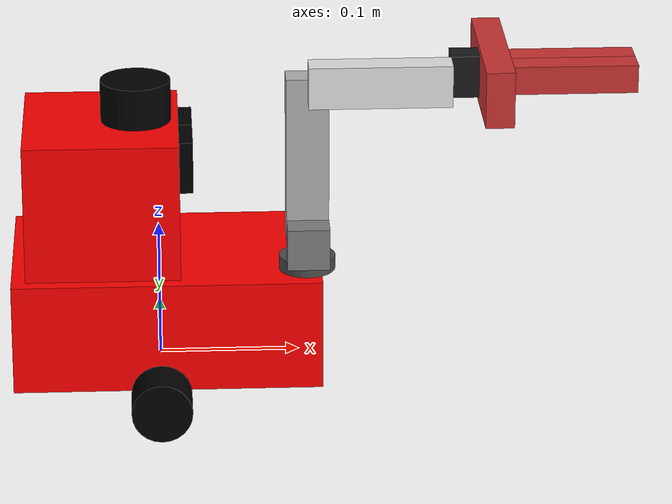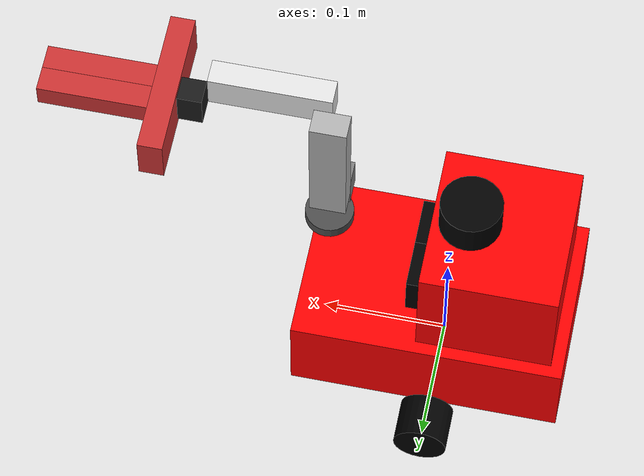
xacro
<?xml version="1.0"?>
<robot xmlns:xacro="http://www.ros.org/wiki/xacro" name="robot">
    <xacro:arg name="initial_positions_file" default="initial_positions.yaml" />

    <!-- Import robot urdf file -->
    <xacro:include filename="$(find robot_arm)/urdf/robot_moveit.urdf.xacro" />

    <!-- Import control_xacro -->
    <xacro:include filename="robot.ros2_control.xacro" />

    <xacro:robot_ros2_control name="FakeSystem" initial_positions_file="$(arg initial_positions_file)"/>

</robot>

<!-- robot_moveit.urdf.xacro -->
<robot xmlns:xacro="http://www.ros.org/wiki/xacro"  name="robot">
    <xacro:arg name="prefix" default="" />
    <xacro:arg name="use_sim_time" default="false" />

    <xacro:arg name="use_fake_hardware" default="false" />
    <xacro:arg name="fake_sensor_commands" default="false" />

    <xacro:include filename="robot_core.xacro" />
    <xacro:include filename="robot_arm.xacro" />
    <xacro:arm/>
    <xacro:include filename="lidar.xacro" />
    <xacro:include filename="camera.xacro" />
    <xacro:include filename="depth_camera.xacro" />

</robot>

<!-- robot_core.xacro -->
<robot xmlns:xacro="http://www.ros.org/wiki/xacro">

    <xacro:include filename="inertial_macros.xacro"/>

    <material name="white">
        <color rgba="1 1 1 1"/>
    </material>

    <material name="black">
        <color rgba="0 0 0 1"/>
    </material>

    <material name="red">
        <color rgba="1 0 0 1"/>
    </material>

    <material name="green">
        <color rgba="0 1 0 1"/>
    </material>

    <material name="blue">
        <color rgba="0 0 1 1"/>
    </material>

    <!-- BASE LINK -->

    <link name="base_link">
    </link>

    <!-- BASE_FOOTPRINT LINK -->
    <joint name="base_footprint_joint" type="fixed">
        <parent link="base_link"/>
        <child link="base_footprint"/>
        <origin xyz="0 0 0" rpy="0 0 0"/>
    </joint>

    <link name="base_footprint">
    </link>

    <!-- CHASSIS LINK -->

    <joint name="chassis_joint" type="fixed">
        <parent link="base_link"/>
        <child link="chassis"/>
        <origin xyz="-0.095 0 0"/>
    </joint>

    <link name="chassis">
        <visual>
            <origin xyz="0.1 0 0.04"/>
            <geometry>
                <box size="0.220 0.14 0.08"/>
            </geometry>
            <material name="red"/>
        </visual>
        <collision>
            <origin xyz="0.1 0 0.04"/>
            <geometry>
                <box size="0.220 0.14 0.08"/>
            </geometry>
        </collision>
        <xacro:inertial_box mass="1.7" x="0.20" y="0.14" z="0.08">
            <origin xyz="0.1 0 0.04" rpy="0 0 0 "/>
        </xacro:inertial_box>
    </link>

    <gazebo reference="chassis">
        <material>Gazebo/Red</material>
    </gazebo>

    <!-- RISERS LINK   -->
    <joint name="risers_joint" type="fixed">
        <parent link="chassis"/>
        <child link="risers_link"/>
        <origin xyz="0.0 0 0.08"/>
    </joint>
    <link name="risers_link">
        <visual>
            <origin xyz="0.055 0 0.05"/>
            <geometry>
                <box size="0.110 0.12 0.1"/>
            </geometry>
            <material name="red"/>
        </visual>
        <collision>
            <origin xyz="0.055 0 0.130"/>
            <geometry>
                <box size="0.110 0.12 0.1"/>
            </geometry>
        </collision>
        <xacro:inertial_box mass=".1" x="0.110" y="0.12" z="0.05">
            <origin xyz="0.055 0 0.130" rpy="0 0 0 "/>
        </xacro:inertial_box>
    </link>

    <gazebo reference="risers_link">
        <material>Gazebo/Red</material>
    </gazebo>

    <!-- LEFT WHEEL LINK -->

    <joint name="left_wheel_joint" type="continuous">
        <parent link="base_link"/>
        <child link="left_wheel"/>
        <origin xyz="0.0 0.094 0.0" rpy="-${pi/2} 0 0" />
        <axis xyz="0 0 1"/>
    </joint>

    <link name="left_wheel">
        <visual>
            <geometry>
                <cylinder radius="0.0215" length="0.035"/>
            </geometry>
            <material name="black"/>
        </visual>
        <collision>
            <geometry>
                <cylinder radius="0.0215" length="0.035"/>
            </geometry>
        </collision>
        <xacro:inertial_cylinder mass="0.1" length="0.035" radius="0.0215">
            <origin xyz="0 0 0" rpy="0 0 0"/>
        </xacro:inertial_cylinder>
    </link>

    <gazebo reference="left_wheel">
        <material>Gazebo/Black</material>
    </gazebo>

    <!-- RIGHT WHEEL LINK -->

    <joint name="right_wheel_joint" type="continuous">
        <parent link="base_link"/>
        <child link="right_wheel"/>
        <origin xyz="0.0 -0.094 0.0" rpy="${pi/2} 0 0" />
        <axis xyz="0 0 -1"/>
    </joint>

    <link name="right_wheel">
        <visual>
            <geometry>
                <cylinder radius="0.0215" length="0.035"/>
            </geometry>
            <material name="black"/>
        </visual>
        <collision>
            <geometry>
                <cylinder radius="0.0215" length="0.035"/>
            </geometry>
        </collision>
        <xacro:inertial_cylinder mass="0.1" length="0.035" radius="0.0215">
            <origin xyz="0 0 0" rpy="0 0 0"/>
        </xacro:inertial_cylinder>
    </link>

    <gazebo reference="right_wheel">
        <material>Gazebo/Black</material>
    </gazebo>

    <!-- FRONT CASTER WHEEL LINK -->

    <joint name="front_caster_wheel_joint" type="fixed">
        <parent link="chassis"/>
        <child link="front_caster_wheel"/>
        <origin xyz=".18 0.0 0.0"/>
    </joint>

    <link name="front_caster_wheel">
        <visual>
            <geometry>
                <sphere radius="0.0215"/>
            </geometry>
            <material name="white"/>
        </visual>
        <collision>
            <geometry>
                <sphere radius="0.0215"/>
            </geometry>
        </collision>
        <xacro:inertial_sphere mass="0.1" radius="0.0215">
            <origin xyz="0 0 0" rpy="0 0 0"/>
        </xacro:inertial_sphere>
    </link>

    <gazebo reference="front_caster_wheel">
        <material>Gazebo/White</material>
        <mu1 value=".001"/>
        <mu2 value=".001"/>
    </gazebo>

    <!-- REAR CASTER WHEEL LINK -->

    <joint name="rear_caster_wheel_joint" type="fixed">
        <parent link="chassis"/>
        <child link="rear_caster_wheel"/>
        <origin xyz=".0215 0.0 0.0"/>
    </joint>

    <link name="rear_caster_wheel">
        <visual>
            <geometry>
                <sphere radius="0.0215"/>
            </geometry>
            <material name="blue"/>
        </visual>
        <collision>
            <geometry>
                <sphere radius="0.0215"/>
            </geometry>
        </collision>
        <xacro:inertial_sphere mass="0.1" radius="0.0215">
            <origin xyz="0 0 0" rpy="0 0 0"/>
        </xacro:inertial_sphere>
    </link>

    <gazebo reference="rear_caster_wheel">
        <material>Gazebo/Blue</material>
        <mu1 value=".001"/>
        <mu2 value=".001"/>
    </gazebo>

</robot>

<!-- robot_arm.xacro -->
<robot xmlns:xacro="http://www.ros.org/wiki/xacro">

  <xacro:macro name="arm">

  <!-- ========== VARIABLE DEFINITIONS ========== -->

  <!-- Base Link Properties -->
  <xacro:property name="link0_radius" value="0.02"/>
  <xacro:property name="link0_length" value="0.01"/>
  <xacro:property name="link0_height" value="0.005"/>
  <xacro:property name="link0_mass" value="0.01"/>

  <!-- Link 1 Properties -->
  <xacro:property name="link1_length" value="0.03"/>
  <xacro:property name="link1_width" value="0.02"/>
  <xacro:property name="link1_height" value="0.03"/>
  <xacro:property name="link1_offset_y" value="0.02"/>
  <xacro:property name="link1_offset_z" value="0.015"/>
  <xacro:property name="link1_mass" value="0.01"/>

  <!-- Link 2 Properties -->
  <xacro:property name="link2_length" value="0.03"/>
  <xacro:property name="link2_width" value="0.02"/>
  <xacro:property name="link2_height" value="0.12"/>
  <xacro:property name="link2_offset_y" value="${link2_width/2}"/>
  <xacro:property name="link2_offset_z" value="${link2_height/2}"/>
  <xacro:property name="link2_mass" value="0.01"/>

  <!-- Link 3 Properties -->
  <xacro:property name="link3_length" value="0.1"/>
  <xacro:property name="link3_width" value="0.02"/>
  <xacro:property name="link3_height" value="0.03"/>
  <xacro:property name="link3_offset_x" value="${link3_length/2}"/>
  <xacro:property name="link3_offset_y" value="${link3_width/2}"/>
  <xacro:property name="link3_offset_z" value="-0.03"/>
  <xacro:property name="link3_mass" value="0.01"/>

  <!-- Link 4 Properties -->
  <xacro:property name="link4_length" value="0.03"/>
  <xacro:property name="link4_width" value="0.02"/>
  <xacro:property name="link4_height" value="0.03"/>
  <xacro:property name="link4_offset_x" value="${link4_length/2}"/>
  <xacro:property name="link4_offset_y" value="${link4_width/2}"/>
  <xacro:property name="link4_offset_z" value="0.03"/>
  <xacro:property name="link4_mass" value="0.01"/>

  <!-- Gripper Properties -->
  <xacro:property name="gripper_base_length" value="0.02"/>
  <xacro:property name="gripper_base_width" value="0.12"/>
  <xacro:property name="gripper_base_height" value="0.04"/>
  <xacro:property name="gripper_base_offset_z" value="0.03"/>
  <xacro:property name="gripper_base_mass" value="0.001"/>

  <xacro:property name="gripper_finger_length" value="0.1"/>
  <xacro:property name="gripper_finger_width" value="0.02"/>
  <xacro:property name="gripper_finger_height" value="0.02"/>
  <xacro:property name="gripper_finger_mass" value="0.001"/>
  <xacro:property name="gripper_max_opening" value="0.1"/>

  <!-- End Effector Properties -->
  <xacro:property name="end_effector_offset_x" value="0.06"/>

  <!-- ========== JOINT PROPERTIES ========== -->

  <!-- Joint angle variables (default values in radians) -->
  <xacro:property name="joint_1_angle" value="0.0"/>
  <xacro:property name="joint_2_angle" value="0.0"/>
  <xacro:property name="joint_3_angle" value="${pi/2}"/>
  <xacro:property name="joint_4_angle" value="0.0"/>

  <!-- Joint limit variables for revolute joints (180 degree range) -->
  <xacro:property name="joint_1_lower_limit" value="${-pi/2}"/>
  <xacro:property name="joint_1_upper_limit" value="${pi/2}"/>
  <xacro:property name="joint_2_lower_limit" value="${-pi/2}"/>
  <xacro:property name="joint_2_upper_limit" value="${pi/2}"/>
  <xacro:property name="joint_3_lower_limit" value="${-pi/2}"/>
  <xacro:property name="joint_3_upper_limit" value="${pi/2}"/>
  <xacro:property name="joint_4_lower_limit" value="${-pi/2}"/>
  <xacro:property name="joint_4_upper_limit" value="${pi/2}"/>

  <!-- Joint effort and velocity limits -->
  <xacro:property name="revolute_joint_effort" value="1000.0"/>
  <xacro:property name="revolute_joint_velocity" value="2.5"/>
  <xacro:property name="prismatic_joint_effort" value="50.0"/>
  <xacro:property name="prismatic_joint_velocity" value="0.5"/>

  <!-- Joint origin offsets (calculated from link dimensions) -->
  <xacro:property name="joint_1_offset_z" value="${link0_length}"/>
  <xacro:property name="joint_2_offset_y" value="${-link2_width/2}"/>
  <xacro:property name="joint_2_offset_z" value="${link1_offset_z}"/>
  <xacro:property name="joint_3_offset_z" value="${link2_height}"/>
  <xacro:property name="joint_4_offset_x" value="${link3_length}"/>
  <xacro:property name="joint_4_offset_y" value="${link4_offset_y}"/>
  <xacro:property name="gripper_base_joint_offset_x" value="${link4_offset_x + link4_length/2}"/>

  <!-- ========== COLOR PROPERTIES ========== -->

  <!-- Named color definitions -->
  <xacro:property name="black" value="0.1 0.1 0.1 1.0"/>
  <xacro:property name="dark_grey" value="0.3 0.3 0.3 1.0"/>
  <xacro:property name="grey" value="0.5 0.5 0.5 1.0"/>
  <xacro:property name="light_grey" value="0.7 0.7 0.7 1.0"/>
  <xacro:property name="white" value="0.9 0.9 0.9 1.0"/>
  <xacro:property name="red" value="0.8 0.2 0.2 1.0"/>
  <xacro:property name="green" value="0.2 0.8 0.2 1.0"/>
  <xacro:property name="blue" value="0.2 0.2 0.8 1.0"/>

  <!-- Color assignment for each link -->
  <xacro:property name="base_color" value="${dark_grey}"/>
  <xacro:property name="link1_color" value="${grey}"/>
  <xacro:property name="link2_color" value="${light_grey}"/>
  <xacro:property name="link3_color" value="${white}"/>
  <xacro:property name="link4_color" value="${black}"/>
  <xacro:property name="gripper_color" value="${red}"/>

  <!-- ========== ROBOT STRUCTURE ========== -->

  <!-- ========== GEOMETRY PROPERTIES ========== -->

  <!-- base_joint fixes link0 to the environment -->
  <joint name="joint_0" type="fixed">
    <parent link="chassis"/>
    <child link="link_0"/>
    <origin xyz="0.200 -0.04 0.08" rpy="0 0 0"/>
    <axis xyz="0 0 1"/>
  </joint>

  <!-- Basic cylindrical base link -->
  <link name="link_0">
    <visual>
      <origin xyz="0 0 ${link0_height}" rpy="0 0 0"/>
      <geometry>
        <cylinder radius="${link0_radius}" length="${link0_length}"/>
      </geometry>
      <material name="base_material">
        <color rgba="${base_color}"/>
      </material>
    </visual>
    <collision>
      <origin xyz="0 0 ${link0_height}" rpy="0 0 0"/>
      <geometry>
        <cylinder radius="${link0_radius}" length="${link0_length}"/>
      </geometry>
    </collision>
    <inertial>
      <mass value="${link0_mass}"/>
      <origin xyz="0 0 ${link0_height}" rpy="0 0 0"/>
      <inertia ixx="0.01" ixy="0.0" ixz="0.0" iyy="0.01" iyz="0.0" izz="0.01"/>
    </inertial>
  </link>

  <!-- joints - main serial chain -->
  <joint name="joint_1" type="revolute">
    <parent link="link_0"/>
    <child link="link_1"/>
    <origin xyz="0 0 ${joint_1_offset_z}" rpy="0 0 0"/>
    <axis xyz="0 0 1"/>
    <limit effort="${revolute_joint_effort}" lower="${joint_1_lower_limit}" upper="${joint_1_upper_limit}" velocity="${revolute_joint_velocity}"/>
  </joint>

  <link name="link_1">
    <visual>
      <origin xyz="0 ${-link1_offset_y} ${link1_offset_z}" rpy="0 0 0"/>
      <geometry>
        <box size="${link1_length} ${link1_width} ${link1_height}"/>
      </geometry>
      <material name="link1_material">
        <color rgba="${link1_color}"/>
      </material>
    </visual>
    <collision>
      <origin xyz="0 ${-link1_offset_y} ${link1_offset_z}" rpy="0 0 0"/>
      <geometry>
        <box size="${link1_length} ${link1_width} ${link1_height}"/>
      </geometry>
    </collision>
    <inertial>
      <mass value="${link1_mass}"/>
      <origin xyz="0 0 0.09" rpy="0 0 0"/>
      <inertia ixx="0.008" ixy="0.0" ixz="0.0" iyy="0.008" iyz="0.0" izz="0.004"/>
    </inertial>
  </link>

  <joint name="joint_2" type="revolute">
    <parent link="link_1"/>
    <child link="link_2"/>
    <origin xyz="0 ${joint_2_offset_y} ${joint_2_offset_z}" rpy="0 0 0"/>
    <axis xyz="0 1 0"/>
    <limit effort="${revolute_joint_effort}" lower="${joint_2_lower_limit}" upper="${joint_2_upper_limit}" velocity="${revolute_joint_velocity}"/>
  </joint>

  <link name="link_2">
    <visual>
      <origin xyz="0 ${link2_offset_y} ${link2_offset_z}" rpy="0 0 0"/>
      <geometry>
        <box size="${link2_length} ${link2_width} ${link2_height}"/>
      </geometry>
      <material name="link2_material">
        <color rgba="${link2_color}"/>
      </material>
    </visual>
    <collision>
      <origin xyz="0 ${link2_offset_y} ${link2_offset_z}" rpy="0 0 0"/>
      <geometry>
        <box size="${link2_length} ${link2_width} ${link2_height}"/>
      </geometry>
    </collision>
    <inertial>
      <mass value="${link2_mass}"/>
      <origin xyz="0.34 0 0" rpy="0 0 0"/>
      <inertia ixx="0.005" ixy="0.0" ixz="0.0" iyy="0.12" iyz="0.0" izz="0.12"/>
    </inertial>
  </link>

  <joint name="joint_3" type="revolute">
    <parent link="link_2"/>
    <child link="link_3"/>
    <origin xyz="0 0 ${joint_3_offset_z}" rpy="0 0 0"/>
    <axis xyz="0 1 0"/>
    <limit effort="${revolute_joint_effort}" lower="${joint_3_lower_limit}" upper="${joint_3_upper_limit}" velocity="${revolute_joint_velocity}"/>
  </joint>

  <link name="link_3">
    <visual>
      <origin xyz="${link3_offset_x} ${-link3_offset_y} 0" rpy="0 0 0"/>
      <geometry>
        <box size="${link3_length} ${link3_width} ${link3_height}"/>
      </geometry>
      <material name="link3_material">
        <color rgba="${link3_color}"/>
      </material>
    </visual>
    <collision>
      <origin xyz="${link3_offset_x} ${-link3_offset_y} 0" rpy="0 0 0"/>
      <geometry>
        <box size="${link3_length} ${link3_width} ${link3_height}"/>
      </geometry>
    </collision>
    <inertial>
      <mass value="${link3_mass}"/>
      <origin xyz="0.25 0 0" rpy="0 0 0"/>
      <inertia ixx="0.003" ixy="0.0" ixz="0.0" iyy="0.045" iyz="0.0" izz="0.045"/>
    </inertial>
  </link>

  <joint name="joint_4" type="revolute">
    <parent link="link_3"/>
    <child link="link_4"/>
    <origin xyz="${joint_4_offset_x} 0 0" rpy="0 0 0"/>
    <axis xyz="0 1 0"/>
    <limit effort="${revolute_joint_effort}" lower="${joint_4_lower_limit}" upper="${joint_4_upper_limit}" velocity="${revolute_joint_velocity}"/>
  </joint>

  <link name="link_4">
    <visual>
      <origin xyz="${link4_offset_x} ${link4_offset_y} 0" rpy="0 0 0"/>
      <geometry>
        <box size="${link4_length} ${link4_width} ${link4_height}"/>
      </geometry>
      <material name="link4_material">
        <color rgba="${link4_color}"/>
      </material>
    </visual>
    <collision>
      <origin xyz="${link4_offset_x} 0 0" rpy="0 0 0"/>
      <geometry>
        <box size="${link4_length} ${link4_width} ${link4_height}"/>
      </geometry>
    </collision>
    <inertial>
      <mass value="${link4_mass}"/>
      <origin xyz="0.09 0 0" rpy="0 0 0"/>
      <inertia ixx="0.001" ixy="0.0" ixz="0.0" iyy="0.003" iyz="0.0" izz="0.003"/>
    </inertial>
  </link>

  <!-- Gripper base link (attached to link_4) -->
  <joint name="gripper_base_joint" type="fixed">
    <parent link="link_4"/>
    <child link="gripper_base"/>
    <origin xyz="${link4_length} ${link4_offset_y} 0" rpy="0 0 0"/>
  </joint>

  <link name="gripper_base">
    <visual>
      <origin xyz="0 0 0" rpy="0 0 0"/>
      <geometry>
        <box size="${gripper_base_length} ${gripper_base_width} ${gripper_base_height}"/>
      </geometry>
      <material name="gripper_base_material">
        <color rgba="${gripper_color}"/>
      </material>
    </visual>
    <collision>
      <origin xyz="0 0 0" rpy="0 0 0"/>
      <geometry>
        <box size="${gripper_base_length} ${gripper_base_width} ${gripper_base_height}"/>
      </geometry>
    </collision>
    <inertial>
      <mass value="${gripper_base_mass}"/>
      <origin xyz="0 0 0" rpy="0 0 0"/>
      <inertia ixx="0.0001" ixy="0.0" ixz="0.0" iyy="0.0001" iyz="0.0" izz="0.0001"/>
    </inertial>
  </link>

  <!-- Left finger prismatic joint and link -->
  <joint name="gripper_left_finger_joint" type="prismatic">
    <parent link="gripper_base"/>
    <child link="gripper_left_finger"/>
    <origin xyz="0 0 0" rpy="0 0 0"/>
    <axis xyz="0 1 0"/>
    <limit effort="${prismatic_joint_effort}" lower="0.0" upper="${gripper_max_opening/2}" velocity="${prismatic_joint_velocity}"/>
  </joint>

  <link name="gripper_left_finger">
    <visual>
      <origin xyz="${gripper_finger_length/2} ${gripper_finger_width/2} 0" rpy="0 0 0"/>
      <geometry>
        <box size="${gripper_finger_length} ${gripper_finger_width} ${gripper_finger_height}"/>
      </geometry>
      <material name="gripper_finger_material">
        <color rgba="${gripper_color}"/>
      </material>
    </visual>
    <collision>
      <origin xyz="${gripper_finger_length/2} ${gripper_finger_width/2} 0" rpy="0 0 0"/>
      <geometry>
        <box size="${gripper_finger_length} ${gripper_finger_width} ${gripper_finger_height}"/>
      </geometry>
    </collision>
    <inertial>
      <mass value="${gripper_finger_mass}"/>
      <origin xyz="0 ${-gripper_finger_width/2} ${gripper_finger_height/2}" rpy="0 0 0"/>
      <inertia ixx="0.00005" ixy="0.0" ixz="0.0" iyy="0.00005" iyz="0.0" izz="0.00005"/>
    </inertial>
  </link>

  <!-- Right finger prismatic joint and link -->
  <joint name="gripper_right_finger_joint" type="prismatic">
    <parent link="gripper_base"/>
    <child link="gripper_right_finger"/>
    <origin xyz="0 0 0" rpy="0 0 0"/>
    <axis xyz="0 -1 0"/>
    <limit effort="${prismatic_joint_effort}" lower="0.0" upper="${gripper_max_opening/2}" velocity="${prismatic_joint_velocity}"/>
    <mimic joint="gripper_left_finger_joint" multiplier="1" offset="0"/>
  </joint>

  <link name="gripper_right_finger">
    <visual>
      <origin xyz="${gripper_finger_length/2} ${-gripper_finger_width/2} 0" rpy="0 0 0"/>
      <geometry>
        <box size="${gripper_finger_length} ${gripper_finger_width} ${gripper_finger_height}"/>
      </geometry>
      <material name="gripper_finger_material">
        <color rgba="${gripper_color}"/>
      </material>
    </visual>
    <collision>
      <origin xyz="${gripper_finger_length/2} ${-gripper_finger_width/2} 0" rpy="0 0 0"/>
      <geometry>
        <box size="${gripper_finger_length} ${gripper_finger_width} ${gripper_finger_height}"/>
      </geometry>
    </collision>
    <inertial>
      <mass value="${gripper_finger_mass}"/>
      <origin xyz="0 ${gripper_finger_width/2} ${gripper_finger_height/2}" rpy="0 0 0"/>
      <inertia ixx="0.00005" ixy="0.0" ixz="0.0" iyy="0.00005" iyz="0.0" izz="0.00005"/>
    </inertial>
  </link>

  <!-- End effector frame (for convenience in motion planning) -->
  <joint name="end_effector_roll_joint" type="fixed">
    <parent link="gripper_base"/>
    <child link="end_effector_roll"/>
    <origin xyz="${end_effector_offset_x} 0 0" rpy="0 0 0"/>
  </joint>

  <link name="end_effector_roll">
    <visual>
      <origin xyz="0 0 0" rpy="0 0 0"/>
      <geometry>
        <box size="0.01 0.01 0.01"/>
      </geometry>
      <material name="end_effector_roll_material">
        <color rgba="${green}"/>
      </material>
    </visual>
  </link>

  <joint name="end_effector_yaw_joint" type="fixed">
    <parent link="end_effector_roll"/>
    <child link="end_effector_yaw"/>
    <origin xyz="0 0 0" rpy="0 0 0"/>
  </joint>
  <link name="end_effector_yaw">
    <visual>
      <origin xyz="0 0 0" rpy="0 0 0"/>
      <geometry>
        <box size="0.01 0.01 0.01"/>
      </geometry>
      <material name="end_effector_yaw_material">
        <color rgba="${green}"/>
      </material>
    </visual>
  </link>

  <!-- End effector frame -->
  <joint name="end_effector_joint" type="fixed">
    <parent link="end_effector_yaw"/>
    <child link="end_effector_frame"/>
    <origin xyz="0 0 0" rpy="0 0 0"/>
  </joint>

  <link name="end_effector_frame">
    <visual>
      <origin xyz="0 0 0" rpy="0 0 0"/>
      <geometry>
        <box size="0.01 0.01 0.01"/>
      </geometry>
      <material name="end_effector_roll_material">
        <color rgba="${green}"/>
      </material>
    </visual>
  </link>

  <!-- Gazebo Materials for Arm Links -->

  <!-- Base Link Material -->
  <gazebo reference="link_0">
    <material>Gazebo/DarkGrey</material>
  </gazebo>

  <!-- Link 1 Material -->
  <gazebo reference="link_1">
    <material>Gazebo/Grey</material>
  </gazebo>

  <!-- Link 2 Material -->
  <gazebo reference="link_2">
    <material>Gazebo/Grey</material>
  </gazebo>

  <!-- Link 3 Material -->
  <gazebo reference="link_3">
    <material>Gazebo/Grey</material>
  </gazebo>

  <!-- Link 4 Material -->
  <gazebo reference="link_4">
    <material>Gazebo/Black</material>
  </gazebo>

  <!-- Gripper Base Material -->
  <gazebo reference="gripper_base">
    <material>Gazebo/Red</material>
  </gazebo>

  <!-- Gripper Finger Materials -->
  <gazebo reference="gripper_left_finger">
    <material>Gazebo/Red</material>
  </gazebo>

  <gazebo reference="gripper_right_finger">
    <material>Gazebo/Red</material>
  </gazebo>

  <gazebo reference="end_effector_roll">
    <material>Gazebo/Green</material>
  </gazebo>

  <gazebo reference="end_effector_yaw">
    <material>Gazebo/Green</material>
  </gazebo>

  <!-- End effector frame material -->
  <gazebo reference="end_effector_frame">
    <material>Gazebo/Green</material>
  </gazebo>

  </xacro:macro>
</robot>

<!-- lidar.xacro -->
<robot xmlns:xacro="http://www.ros.org/wiki/xacro" >

    <joint name="laser_joint" type="fixed">
        <parent link="risers_link"/>
        <child link="laser_frame"/>
        <origin xyz="0.08 0 0.115" rpy="0 0 0"/>
    </joint>

    <link name="laser_frame">
        <visual>
            <origin xyz="0 0 0"/>
            <geometry>
                <cylinder radius="0.025" length="0.03"/>
            </geometry>
            <material name="black"/>
        </visual>
        <collision>
            <geometry>
                <cylinder radius="0.025" length="0.03"/>
            </geometry>
        </collision>
        <xacro:inertial_cylinder mass="0.1" length="0.03" radius="0.025">
            <origin xyz="0 0 0" rpy="0 0 0"/>
        </xacro:inertial_cylinder>
    </link>

    <gazebo reference="laser_frame">
        <material>Gazebo/Black</material>

        <sensor name="laser" type="ray">
            <pose> 0 0 0 0 0 0 </pose>
            <visualize>false</visualize>
            <update_rate>10</update_rate>
            <ray>
                <scan>
                    <horizontal>
                        <samples>360</samples>
                        <min_angle>-3.14</min_angle>
                        <max_angle>3.14</max_angle>
                    </horizontal>
                </scan>
                <range>
                    <min>0.3</min>
                    <max>12</max>
                </range>
            </ray>
            <plugin name="laser_controller" filename="libgazebo_ros_ray_sensor.so">
                <ros>
                    <argument>~/out:=scan</argument>
                </ros>
                <output_type>sensor_msgs/LaserScan</output_type>
                <frame_name>laser_frame</frame_name>
            </plugin>
        </sensor>
    </gazebo>

</robot>

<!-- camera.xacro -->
<robot xmlns:xacro="http://www.ros.org/wiki/xacro" >

    <joint name="camera_joint" type="fixed">
        <parent link="risers_link"/>
        <child link="camera_link"/>
        <origin xyz="0.115 0 0.069" rpy="0 0 0"/>
    </joint>

    <link name="camera_link">
        <visual>
            <geometry>
                <box size=".01 .038 .038"/>
            </geometry>
            <material name="black"/>
        </visual>
    </link>

    <joint name="camera_optical_joint" type="fixed">
        <parent link="camera_link"/>
        <child link="camera_link_optical"/>
        <origin xyz="0 0 0" rpy="${-pi/2} 0 ${-pi/2}"/>
    </joint>

    <link name="camera_link_optical"></link>

    <gazebo reference="camera_link">
        <material>Gazebo/Black</material>

        <sensor name="camera" type="camera">
            <pose> 0 0 0 0 0 0 </pose>
            <visualize>true</visualize>
            <update_rate>5</update_rate>
            <camera>
                <horizontal_fov>1.089</horizontal_fov>
                <image>
                    <format>R8G8B8</format>
                    <width>640</width>
                    <height>480</height>
                </image>
                <clip>
                    <near>0.05</near>
                    <far>8.0</far>
                </clip>
            </camera>
            <plugin name="camera_controller" filename="libgazebo_ros_camera.so">
                <frame_name>camera_link_optical</frame_name>
            </plugin>
        </sensor>
    </gazebo>

</robot>

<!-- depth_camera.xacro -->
<robot xmlns:xacro="http://www.ros.org/wiki/xacro" >

    <joint name="depth_camera_joint" type="fixed">
        <parent link="risers_link"/>
        <child link="depth_camera_link"/>
        <origin xyz="0.115 0.038 0.069" rpy="0 0 0"/>
    </joint>

    <link name="depth_camera_link">
        <visual>
            <geometry>
                <box size=".01 .038 .038"/>
            </geometry>
            <material name="black"/>
        </visual>
    </link>

    <joint name="depth_camera_optical_joint" type="fixed">
        <parent link="depth_camera_link"/>
        <child link="depth_camera_link_optical"/>
        <origin xyz="0 0 0" rpy="${-pi/2} 0 ${-pi/2}"/>
    </joint>

    <link name="depth_camera_link_optical"></link>

    <gazebo reference="depth_camera_link">
        <material>Gazebo/Black</material>

        <sensor name="camera" type="depth">
            <pose> 0 0 0 0 0 0 </pose>
            <visualize>true</visualize>
            <update_rate>5</update_rate>
            <camera>
                <horizontal_fov>1.089</horizontal_fov>
                <image>
                    <format>B8G8R8</format>
                    <width>640</width>
                    <height>480</height>
                </image>
                <clip>
                    <near>0.05</near>
                    <far>8.0</far>
                </clip>
            </camera>
            <plugin name="depth_camera_controller" filename="libgazebo_ros_camera.so">
                <frame_name>depth_camera_link_optical</frame_name>
                <mindepth>0.1</mindepth>
                <maxdepth>100.0</maxdepth>
            </plugin>
        </sensor>
    </gazebo>

</robot>
